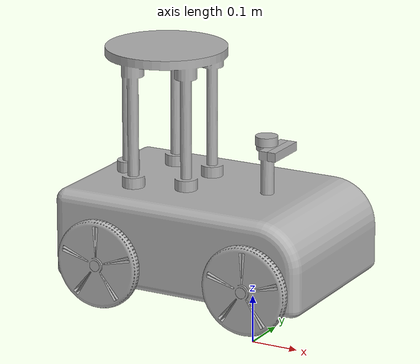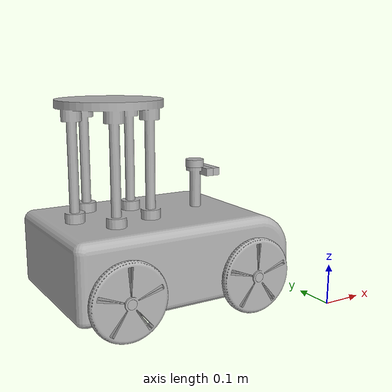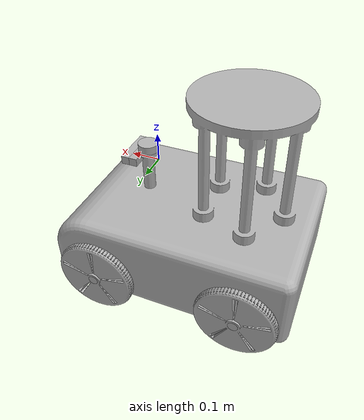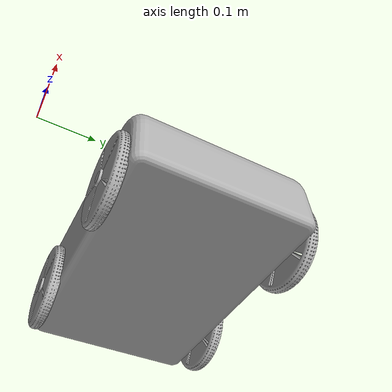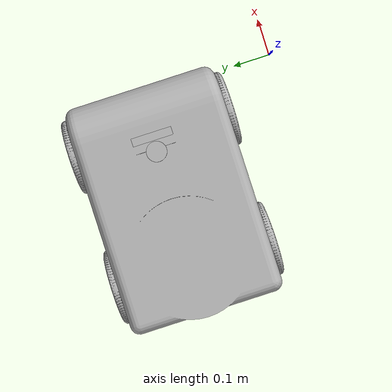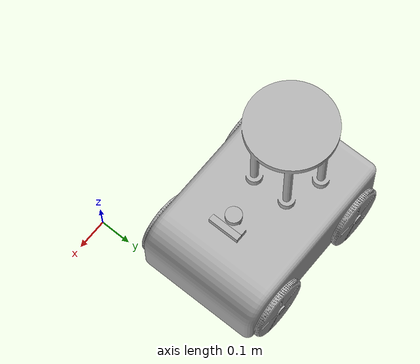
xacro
<?xml version="1.0" ?>
<robot name="uvc_urdf" xmlns:xacro="http://www.ros.org/wiki/xacro">

<xacro:include filename="$(find uvc_urdf_description)/urdf/materials.xacro" />
<xacro:include filename="$(find uvc_urdf_description)/urdf/uvc_urdf.gazebo" />
<link name="ebot_base">
  <inertial>
    <origin rpy="0 0 0" xyz="-0.2941067702045452 0.364614547558235 0.10653803373518483"/>
    <mass value="385.8480835196417"/>
    <inertia ixx="8.050539" ixy="0.0" ixz="0.757727" iyy="14.074564" iyz="-0.0" izz="15.896639"/>
  </inertial>
  <visual>
    <origin rpy="0 0 0" xyz="0 0 0"/>
    <geometry>
      <mesh filename="package://uvc_urdf_description/meshes/ebot_base.stl" scale="0.001 0.001 0.001"/>
    </geometry>
    <material name="silver"/>
  </visual>
  <collision>
    <origin rpy="0 0 0" xyz="0 0 0"/>
    <geometry>
      <mesh filename="package://uvc_urdf_description/meshes/ebot_base.stl" scale="0.001 0.001 0.001"/>
    </geometry>
  </collision>
</link>

<link name="lidar_1">
  <inertial>
    <origin rpy="0 0 0" xyz="-9.99186391403839e-08 -4.5244176483105747e-07 0.009999906470253561"/>
    <mass value="0.3020463813474771"/>
    <inertia ixx="5.6e-05" ixy="0.0" ixz="0.0" iyy="5.6e-05" iyz="0.0" izz="9.2e-05"/>
  </inertial>
  <visual>
    <origin rpy="0 0 0" xyz="0.161812 -0.364615 -0.303208"/>
    <geometry>
      <mesh filename="package://uvc_urdf_description/meshes/lidar_1.stl" scale="0.001 0.001 0.001"/>
    </geometry>
    <material name="silver"/>
  </visual>
  <collision>
    <origin rpy="0 0 0" xyz="0.161812 -0.364615 -0.303208"/>
    <geometry>
      <mesh filename="package://uvc_urdf_description/meshes/lidar_1.stl" scale="0.001 0.001 0.001"/>
    </geometry>
  </collision>
</link>

<link name="realsense_1">
  <inertial>
    <origin rpy="0 0 0" xyz="0.010000331939484464 -4.5244176494207977e-07 -9.352974644771805e-08"/>
    <mass value="0.3140000000000004"/>
    <inertia ixx="0.000272" ixy="0.0" ixz="0.0" iyy="2.1e-05" iyz="0.0" izz="0.000272"/>
  </inertial>
  <visual>
    <origin rpy="0 0 0" xyz="0.134262 -0.364615 -0.293208"/>
    <geometry>
      <mesh filename="package://uvc_urdf_description/meshes/realsense_1.stl" scale="0.001 0.001 0.001"/>
    </geometry>
    <material name="silver"/>
  </visual>
  <collision>
    <origin rpy="0 0 0" xyz="0.134262 -0.364615 -0.293208"/>
    <geometry>
      <mesh filename="package://uvc_urdf_description/meshes/realsense_1.stl" scale="0.001 0.001 0.001"/>
    </geometry>
  </collision>
</link>

<link name="FR_1">
  <inertial>
    <origin rpy="0 0 0" xyz="1.1625997972525282e-06 0.017468514014645553 -7.103997127222428e-07"/>
    <mass value="5.321454736767083"/>
    <inertia ixx="0.013359" ixy="0.0" ixz="-0.0" iyy="0.026172" iyz="-0.0" izz="0.013359"/>
  </inertial>
  <visual>
    <origin rpy="0 0 0" xyz="0.104262 -0.139615 -0.043208"/>
    <geometry>
      <mesh filename="package://uvc_urdf_description/meshes/FR_1.stl" scale="0.001 0.001 0.001"/>
    </geometry>
    <material name="silver"/>
  </visual>
  <collision>
    <origin rpy="0 0 0" xyz="0.104262 -0.139615 -0.043208"/>
    <geometry>
      <mesh filename="package://uvc_urdf_description/meshes/FR_1.stl" scale="0.001 0.001 0.001"/>
    </geometry>
  </collision>
</link>

<link name="RR_1">
  <inertial>
    <origin rpy="0 0 0" xyz="1.1625997972108948e-06 0.01746851401464572 -7.103997135479712e-07"/>
    <mass value="5.321454736767083"/>
    <inertia ixx="0.013359" ixy="0.0" ixz="-0.0" iyy="0.026172" iyz="-0.0" izz="0.013359"/>
  </inertial>
  <visual>
    <origin rpy="0 0 0" xyz="0.464262 -0.139615 -0.043208"/>
    <geometry>
      <mesh filename="package://uvc_urdf_description/meshes/RR_1.stl" scale="0.001 0.001 0.001"/>
    </geometry>
    <material name="silver"/>
  </visual>
  <collision>
    <origin rpy="0 0 0" xyz="0.464262 -0.139615 -0.043208"/>
    <geometry>
      <mesh filename="package://uvc_urdf_description/meshes/RR_1.stl" scale="0.001 0.001 0.001"/>
    </geometry>
  </collision>
</link>

<link name="RL_1">
  <inertial>
    <origin rpy="0 0 0" xyz="1.1625997974884505e-06 -0.017531485985354367 -7.103997135202156e-07"/>
    <mass value="5.321454736767083"/>
    <inertia ixx="0.013359" ixy="0.0" ixz="-0.0" iyy="0.026172" iyz="-0.0" izz="0.013359"/>
  </inertial>
  <visual>
    <origin rpy="0 0 0" xyz="0.464262 -0.589615 -0.043208"/>
    <geometry>
      <mesh filename="package://uvc_urdf_description/meshes/RL_1.stl" scale="0.001 0.001 0.001"/>
    </geometry>
    <material name="silver"/>
  </visual>
  <collision>
    <origin rpy="0 0 0" xyz="0.464262 -0.589615 -0.043208"/>
    <geometry>
      <mesh filename="package://uvc_urdf_description/meshes/RL_1.stl" scale="0.001 0.001 0.001"/>
    </geometry>
  </collision>
</link>

<link name="FL_1">
  <inertial>
    <origin rpy="0 0 0" xyz="1.162599797585595e-06 -0.01753148598535459 -7.103997126112205e-07"/>
    <mass value="5.321454736767083"/>
    <inertia ixx="0.013359" ixy="0.0" ixz="-0.0" iyy="0.026172" iyz="-0.0" izz="0.013359"/>
  </inertial>
  <visual>
    <origin rpy="0 0 0" xyz="0.104262 -0.589615 -0.043208"/>
    <geometry>
      <mesh filename="package://uvc_urdf_description/meshes/FL_1.stl" scale="0.001 0.001 0.001"/>
    </geometry>
    <material name="silver"/>
  </visual>
  <collision>
    <origin rpy="0 0 0" xyz="0.104262 -0.589615 -0.043208"/>
    <geometry>
      <mesh filename="package://uvc_urdf_description/meshes/FL_1.stl" scale="0.001 0.001 0.001"/>
    </geometry>
  </collision>
</link>

<joint name="LIDAR" type="fixed">
  <origin rpy="0 0 0" xyz="-0.161812 0.364615 0.303208"/>
  <parent link="ebot_base"/>
  <child link="lidar_1"/>
</joint>

<joint name="REALSENSE" type="fixed">
  <origin rpy="0 0 0" xyz="-0.134262 0.364615 0.293208"/>
  <parent link="ebot_base"/>
  <child link="realsense_1"/>
</joint>

<joint name="FRW" type="continuous">
  <origin rpy="0 0 0" xyz="-0.104262 0.139615 0.043208"/>
  <parent link="ebot_base"/>
  <child link="FR_1"/>
  <axis xyz="-0.0 -1.0 -0.0"/>
</joint>

<joint name="RRW" type="continuous">
  <origin rpy="0 0 0" xyz="-0.464262 0.139615 0.043208"/>
  <parent link="ebot_base"/>
  <child link="RR_1"/>
  <axis xyz="-0.0 -1.0 -0.0"/>
</joint>

<joint name="RLW" type="continuous">
  <origin rpy="0 0 0" xyz="-0.464262 0.589615 0.043208"/>
  <parent link="ebot_base"/>
  <child link="RL_1"/>
  <axis xyz="0.0 1.0 0.0"/>
</joint>

<joint name="FLW" type="continuous">
  <origin rpy="0 0 0" xyz="-0.104262 0.589615 0.043208"/>
  <parent link="ebot_base"/>
  <child link="FL_1"/>
  <axis xyz="0.0 1.0 0.0"/>
</joint>

</robot>

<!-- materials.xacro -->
<robot name="uvc_urdf" xmlns:xacro="http://www.ros.org/wiki/xacro" >

<material name="silver">
  <color rgba="0.700 0.700 0.700 1.000"/>
</material>

</robot>

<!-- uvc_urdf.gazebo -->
<robot name="uvc_urdf" xmlns:xacro="http://www.ros.org/wiki/xacro" >

<xacro:property name="body_color" value="Gazebo/Silver" />

  <gazebo>
    <plugin name="skid_steer_drive_controller" filename="libgazebo_ros_skid_steer_drive.so">
      <updateRate>40.0</updateRate>
      <leftFrontJoint>FLW</leftFrontJoint>
      <rightFrontJoint>FRW</rightFrontJoint>
      <leftRearJoint>RLW</leftRearJoint>
      <rightRearJoint>RRW</rightRearJoint>
      <wheelSeparation>0.4</wheelSeparation>
      <wheelDiameter>0.2</wheelDiameter>
      <robotBaseFrame>ebot_base</robotBaseFrame>
      <torque>60</torque>
      <topicName>cmd_vel2</topicName>

      <commandTopic>cmd_vel</commandTopic>
      <odometryTopic>odom</odometryTopic>
      <odometryFrame>odom</odometryFrame>

      <broadcastTF>true</broadcastTF>
   </plugin>
  </gazebo>
<gazebo reference="ebot_base">
  <material>${body_color}</material>
  <mu1>0.2</mu1>
  <mu2>0.2</mu2>
  <selfCollide>true</selfCollide>
  <gravity>true</gravity>
</gazebo>

<gazebo reference="lidar_1">
  <material>${body_color}</material>
  <mu1>0.2</mu1>
  <mu2>0.2</mu2>
  <selfCollide>true</selfCollide>
</gazebo>

<gazebo reference="realsense_1">
  <material>${body_color}</material>
  <mu1>0.2</mu1>
  <mu2>0.2</mu2>
  <selfCollide>true</selfCollide>
</gazebo>

<gazebo reference="FR_1">
  <material>${body_color}</material>
  <mu1>0.2</mu1>
  <mu2>0.2</mu2>
  <selfCollide>true</selfCollide>
</gazebo>

<gazebo reference="RR_1">
  <material>${body_color}</material>
  <mu1>0.2</mu1>
  <mu2>0.2</mu2>
  <selfCollide>true</selfCollide>
</gazebo>

<gazebo reference="RL_1">
  <material>${body_color}</material>
  <mu1>0.2</mu1>
  <mu2>0.2</mu2>
  <selfCollide>true</selfCollide>
</gazebo>

<gazebo reference="FL_1">
  <material>${body_color}</material>
  <mu1>0.2</mu1>
  <mu2>0.2</mu2>
  <selfCollide>true</selfCollide>
</gazebo>

<gazebo reference="lidar_1">
    <sensor type="ray" name="head_rplidar_sensor">
      <pose>0 0 0 0 0 0</pose>
      <visualize>true</visualize>
      <update_rate>40</update_rate>
      <ray>
        <scan>
          <horizontal>
            <samples>720</samples>
            <resolution>1</resolution>
            <min_angle>-2.35619</min_angle>
            <max_angle>2.35619</max_angle>
          </horizontal>
        </scan>
        <range>
          <min>0.5</min>
          <max>20.0</max>
          <resolution>0.01</resolution>
        </range>
        <noise>
          <type>gaussian</type>
          <mean>0.0</mean>
          <stddev>0.01</stddev>
        </noise>
      </ray>
      <plugin name="gazebo_ros_head_rplidar_controller" filename="libgazebo_ros_laser.so">
        <topicName>/ebot/laser/scan</topicName>
        <frameName>lidar_1</frameName>
      </plugin>
    </sensor>
  </gazebo>

<gazebo reference="realsense_1">
    <sensor type="depth" name="intelrealsenseD435i">
      <always_on>1</always_on>
      <visualize>true</visualize>
      <camera>
        <horizontal_fov>1.047</horizontal_fov>
        <image>
          <width>640</width>
          <height>480</height>
          <format>R8G8B8</format>
        </image>
        <depth_camera>

        </depth_camera>
        <clip>
          <near>0.1</near>
          <far>100</far>
        </clip>
      </camera>
      <plugin name="intelrealsense" filename="libgazebo_ros_openni_kinect.so">
        <alwaysOn>true</alwaysOn>
        <updateRate>10.0</updateRate>
        <cameraName>camera</cameraName>
        <frameName>camera_depth_frame</frameName>
        <imageTopicName>/camera/color/image_raw</imageTopicName>
        <depthImageTopicName>/camera/depth/image_rect_raw</depthImageTopicName>
        <pointCloudTopicName>depth/points</pointCloudTopicName>
        <cameraInfoTopicName>/camera/color/camera_info</cameraInfoTopicName>
        <depthImageCameraInfoTopicName>/camera/depth/camera_info</depthImageCameraInfoTopicName>
        <pointCloudCutoff>0.2</pointCloudCutoff>
         <pointCloudCutoffMax>10.0</pointCloudCutoffMax>
        <hackBaseline>0.07</hackBaseline>
        <distortionK1>0.0</distortionK1>
        <distortionK2>0.0</distortionK2>
        <distortionK3>0.0</distortionK3>
        <distortionT1>0.0</distortionT1>
        <distortionT2>0.0</distortionT2>
        <CxPrime>0.0</CxPrime>
        <Cx>0.0</Cx>
        <Cy>0.0</Cy>
        <focalLength>0.0</focalLength>
      </plugin>
    </sensor>
  </gazebo>

  <gazebo reference="realsense_1">
    <gravity>true</gravity>
    <sensor name="imu_sensor" type="imu">
      <always_on>true</always_on>
      <update_rate>100</update_rate>
      <visualize>true</visualize>
      <topic>__default_topic__</topic>
      <plugin filename="libgazebo_ros_imu_sensor.so" name="imu_plugin">
        <topicName>imu</topicName>
        <bodyName>imu_link</bodyName>
        <updateRateHZ>10.0</updateRateHZ>
        <gaussianNoise>0.0</gaussianNoise>
        <xyzOffset>0 0 0</xyzOffset>
        <rpyOffset>0 0 0</rpyOffset>
        <frameName>imu_link</frameName>
        <initialOrientationAsReference>false</initialOrientationAsReference>
      </plugin>
      <pose>0 0 0 0 0 0</pose>
    </sensor>
  </gazebo>

</robot>
